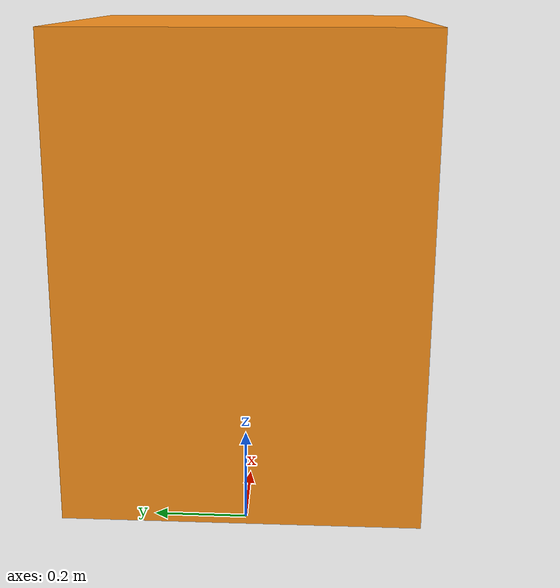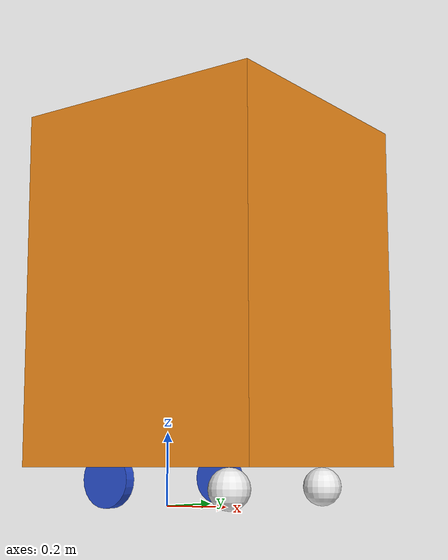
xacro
<?xml version="1.0"?>
<robot xmlns:xacro="http://www.ros.org/wiki/xacro" >

    <xacro:property name="chassis_length" value="0.72"/>  <!-- Length and offset is specified in Meters -->
    <xacro:property name="chassis_width" value="0.71"/>
    <xacro:property name="chassis_height" value="0.955"/>
    <xacro:property name="chassis_offset_z" value="0.105"/>
    <xacro:property name="chassis_offset_x" value="0.205"/>
    <xacro:property name="chassis_mass" value="30.0"/>  <!-- Mass is specified in Kilograms -->
    <xacro:property name="wheel_radius" value="0.0735"/>
    <xacro:property name="wheel_thickness" value="0.03"/>
    <xacro:property name="wheel_mass" value="1.5"/>
    <xacro:property name="wheel_offset_x" value="0.226"/>
    <xacro:property name="wheel_offset_y" value="0.245"/>
    <xacro:property name="wheel_offset_z" value="${wheel_radius}"/>
    <xacro:property name="caster_wheel_radius" value="${chassis_offset_z / 2}"/>
    <xacro:property name="caster_wheel_mass" value="1"/>
    <xacro:property name="caster_wheel_offset_x" value="0.57"/>
    <xacro:property name="caster_wheel_offset_y" value="0.22"/>
    <xacro:property name="caster_wheel_offset_z" value="${-chassis_offset_z / 2}"/>

    <!-- BASE LINK -->

    <link name="base_link">

    </link>

    <!-- BASE_FOOTPRINT LINK -->

    <joint name="base_footprint_joint" type="fixed">
        <parent link="base_link"/>
        <child link="base_footprint"/>
        <origin xyz="0 0 0" rpy="0 0 0"/>
    </joint>

    <link name="base_footprint">
    </link>

    <!-- CHASSIS LINK -->

    <joint name="chassis_joint" type="fixed">
        <parent link="base_link"/>
        <child link="chassis"/>
        <origin xyz="${-chassis_offset_x} 0 ${chassis_offset_z}"/>
    </joint>

    <link name="chassis">
        <visual>
            <origin xyz="${chassis_length/2} 0 ${chassis_height/2}"/>
            <geometry>
                <box size="${chassis_length} ${chassis_width} ${chassis_height}"/>
            </geometry>
            <material name="orange"/>
        </visual>
        <collision>
            <origin xyz="${chassis_length/2} 0 ${chassis_height/2}"/>
            <geometry>
                <box size="${chassis_length} ${chassis_width} ${chassis_height}"/>
            </geometry>
        </collision>
        <xacro:inertial_box mass="${chassis_mass}" x="${chassis_length}" y="${chassis_width}" z="${chassis_height}">
            <origin xyz="${chassis_length/2} 0 ${chassis_height/2}" rpy="0 0 0"/>
        </xacro:inertial_box>
    </link>

    <gazebo reference="chassis">
        <material>Gazebo/Orange</material>
    </gazebo>

    <!-- LEFT WHEEL LINK -->

    <joint name="left_wheel_joint" type="continuous">
        <parent link="base_link"/>
        <child link="left_wheel"/>
        <origin xyz="0 ${wheel_offset_y} ${wheel_offset_z}" rpy="-${pi/2} 0 0" />
        <axis xyz="0 0 1"/>
    </joint>

    <link name="left_wheel">
        <visual>
            <geometry>
                <cylinder radius="${wheel_radius}" length="${wheel_thickness}"/>
            </geometry>
            <material name="blue"/>
        </visual>
        <collision>
            <geometry>
                <sphere radius="${wheel_radius}"/>
            </geometry>
        </collision>
        <xacro:inertial_cylinder mass="${wheel_mass}" length="${wheel_thickness}" radius="${wheel_radius}">
            <origin xyz="0 0 0" rpy="0 0 0"/>
        </xacro:inertial_cylinder>
    </link>

    <gazebo reference="left_wheel">
        <material>Gazebo/Blue</material>
    </gazebo>

    <!-- RIGHT WHEEL LINK -->

    <joint name="right_wheel_joint" type="continuous">
        <parent link="base_link"/>
        <child link="right_wheel"/>
        <origin xyz="0 ${-wheel_offset_y} ${wheel_offset_z}" rpy="${pi/2} 0 0" />
        <axis xyz="0 0 -1"/>
    </joint>

    <link name="right_wheel">
        <visual>
            <geometry>
                <cylinder radius="${wheel_radius}" length="${wheel_thickness}"/>
            </geometry>
            <material name="blue"/>
        </visual>
        <collision>
            <geometry>
                <sphere radius="${wheel_radius}"/>
            </geometry>
        </collision>
        <xacro:inertial_cylinder mass="${wheel_mass}" length="${wheel_thickness}" radius="${wheel_radius}">
            <origin xyz="0 0 0" rpy="0 0 0"/>
        </xacro:inertial_cylinder>
    </link>

    <gazebo reference="right_wheel">
        <material>Gazebo/Blue</material>
    </gazebo>

    <!-- LEFT CASTER WHEEL LINK -->

    <joint name="left_caster_wheel_joint" type="fixed">
        <parent link="chassis"/>
        <child link="left_caster_wheel"/>
        <origin xyz="${caster_wheel_offset_x} ${caster_wheel_offset_y} ${caster_wheel_offset_z}"/>
    </joint>

    <link name="left_caster_wheel">
        <visual>
            <geometry>
                <sphere radius="${caster_wheel_radius}"/>
            </geometry>
            <material name="white"/>
        </visual>
        <collision>
            <geometry>
                <sphere radius="${caster_wheel_radius}"/>
            </geometry>
        </collision>
        <xacro:inertial_sphere mass="${caster_wheel_mass}" radius="${caster_wheel_radius}">
            <origin xyz="0 0 0" rpy="0 0 0"/>
        </xacro:inertial_sphere>
    </link>

    <gazebo reference="left_caster_wheel">
        <material>Gazebo/White</material>
        <mu1 value="0.001"/>
        <mu2 value="0.001"/>
    </gazebo>

    <!-- RIGHT CASTER WHEEL LINK -->

    <joint name="right_caster_wheel_joint" type="fixed">
        <parent link="chassis"/>
        <child link="right_caster_wheel"/>
        <origin xyz="${caster_wheel_offset_x} ${-caster_wheel_offset_y} ${caster_wheel_offset_z}"/>
    </joint>

    <link name="right_caster_wheel">
        <visual>
            <geometry>
                <sphere radius="${caster_wheel_radius}"/>
            </geometry>
            <material name="white"/>
        </visual>
        <collision>
            <geometry>
                <sphere radius="${caster_wheel_radius}"/>
            </geometry>
        </collision>
        <xacro:inertial_sphere mass="${caster_wheel_mass}" radius="${caster_wheel_radius}">
            <origin xyz="0 0 0" rpy="0 0 0"/>
        </xacro:inertial_sphere>
    </link>

    <gazebo reference="right_caster_wheel">
        <material>Gazebo/White</material>
        <mu1 value="0.001"/>
        <mu2 value="0.001"/>
    </gazebo>

</robot>
